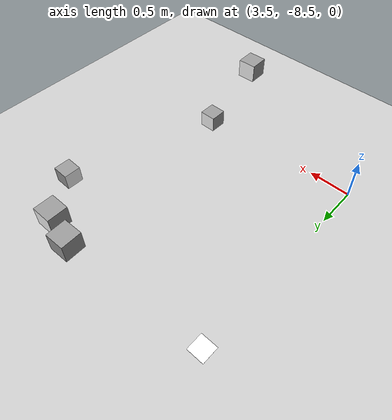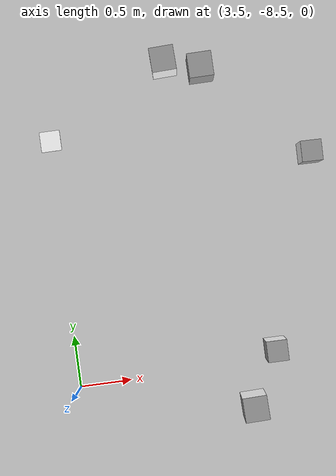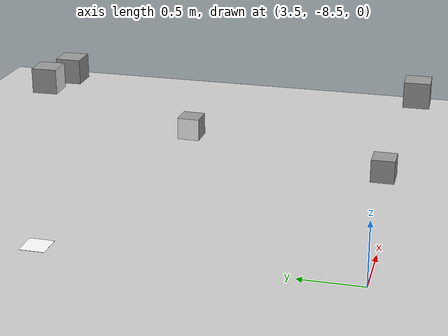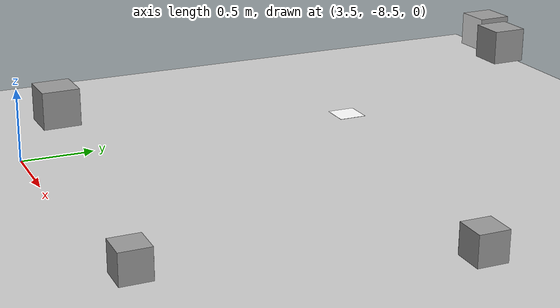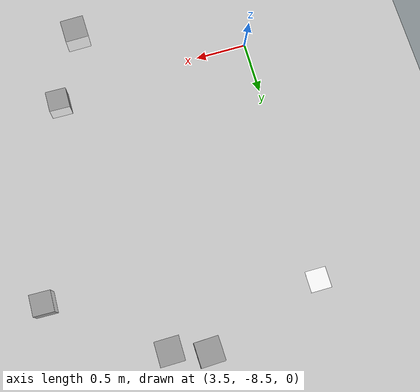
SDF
<sdf version="1.7">
 <world name="default">
  <model name="ground_plane">
   <static>1</static>
   <link name="link">
    <collision name="collision">
     <geometry><plane><normal>0 0 1</normal><size>100 100</size></plane></geometry>
     <surface>
      <contact><collide_bitmask>65535</collide_bitmask></contact>
      <friction><ode><mu>100</mu><mu2>50</mu2></ode></friction>
     </surface>
    </collision>
    <visual name="visual">
     <cast_shadows>0</cast_shadows>
     <geometry><plane><normal>0 0 1</normal><size>100 100</size></plane></geometry>
     <material>
      <script><uri>file://media/materials/scripts/gazebo.material</uri><name>Gazebo/Grey</name></script>
     </material>
    </visual>
   </link>
  </model>
  <model name="marker16_box">
   <link name="marker">
    <inertial>
     <mass>0.1</mass>
     <inertia><ixx>0</ixx><ixy>0</ixy><ixz>0</ixz><iyy>0</iyy><iyz>0</iyz><izz>0</izz></inertia>
    </inertial>
    <self_collide>1</self_collide>
    <pose>-0.76428 -0.101106 0.120004 -0.015494 1.56996 -0.015507</pose>
    <visual name="visual">
     <geometry><box><size>0.2 0.2 0.001</size></box></geometry>
     <material>
      <script>
       <uri>model://marker16/material/scripts</uri>
       <uri>model://marker16/material/textures</uri>
       <name>Aruco/marker16</name>
      </script>
      <shader type="pixel"><normal_map>__default__</normal_map></shader>
      <emissive>0 0 0 1</emissive>
      <ambient>1 1 1 1</ambient>
      <diffuse>1 1 1 1</diffuse>
      <specular>0 0 0 1</specular>
     </material>
    </visual>
    <collision name="collision">
     <geometry><box><size>0.2 0.2 0.02</size></box></geometry>
     <surface>
      <friction>
       <ode><mu>1</mu><mu2>1</mu2><fdir1>0 0 0</fdir1><slip1>0</slip1><slip2>0</slip2></ode>
       <torsional>
        <coefficient>1</coefficient>
        <patch_radius>0</patch_radius>
        <surface_radius>0</surface_radius>
        <use_patch_radius>1</use_patch_radius>
        <ode><slip>0</slip></ode>
       </torsional>
      </friction>
      <bounce><restitution_coefficient>0</restitution_coefficient><threshold>1e+06</threshold></bounce>
      <contact>
       <collide_without_contact>0</collide_without_contact>
       <collide_without_contact_bitmask>1</collide_without_contact_bitmask>
       <collide_bitmask>1</collide_bitmask>
       <ode>
        <soft_cfm>0</soft_cfm>
        <soft_erp>0.2</soft_erp>
        <kp>1e+13</kp>
        <kd>1</kd>
        <max_vel>0.01</max_vel>
        <min_depth>0</min_depth>
       </ode>
       <bullet>
        <split_impulse>1</split_impulse>
        <split_impulse_penetration_threshold>-0.01</split_impulse_penetration_threshold>
        <soft_cfm>0</soft_cfm>
        <soft_erp>0.2</soft_erp>
        <kp>1e+13</kp>
        <kd>1</kd>
       </bullet>
      </contact>
     </surface>
    </collision>
   </link>
   <link name="link_1">
    <inertial>
     <mass>1</mass>
     <inertia>
      <ixx>0.166667</ixx>
      <ixy>0</ixy>
      <ixz>0</ixz>
      <iyy>0.166667</iyy>
      <iyz>0</iyz>
      <izz>0.166667</izz>
     </inertia>
    </inertial>
    <pose>-0.86428 -0.101106 0.12 -1.3e-05 -4.2e-05 0</pose>
    <visual name="visual">
     <geometry><box><size>0.2 0.2 0.2</size></box></geometry>
     <material>
      <lighting>1</lighting>
      <script><uri>file://media/materials/scripts/gazebo.material</uri><name>Gazebo/Grey</name></script>
      <shader type="pixel"><normal_map>__default__</normal_map></shader>
      <emissive>0 0 0 1</emissive>
      <ambient>0.3 0.3 0.3 1</ambient>
      <diffuse>0.7 0.7 0.7 1</diffuse>
      <specular>0.01 0.01 0.01 1</specular>
     </material>
    </visual>
    <collision name="collision">
     <geometry><box><size>0.2 0.2 0.2</size></box></geometry>
     <surface>
      <friction>
       <ode><mu>1</mu><mu2>1</mu2><fdir1>0 0 0</fdir1><slip1>0</slip1><slip2>0</slip2></ode>
       <torsional>
        <coefficient>1</coefficient>
        <patch_radius>0</patch_radius>
        <surface_radius>0</surface_radius>
        <use_patch_radius>1</use_patch_radius>
        <ode><slip>0</slip></ode>
       </torsional>
      </friction>
      <bounce><restitution_coefficient>0</restitution_coefficient><threshold>1e+06</threshold></bounce>
      <contact>
       <collide_without_contact>0</collide_without_contact>
       <collide_without_contact_bitmask>1</collide_without_contact_bitmask>
       <collide_bitmask>1</collide_bitmask>
       <ode>
        <soft_cfm>0</soft_cfm>
        <soft_erp>0.2</soft_erp>
        <kp>1e+13</kp>
        <kd>1</kd>
        <max_vel>0.01</max_vel>
        <min_depth>0</min_depth>
       </ode>
       <bullet>
        <split_impulse>1</split_impulse>
        <split_impulse_penetration_threshold>-0.01</split_impulse_penetration_threshold>
        <soft_cfm>0</soft_cfm>
        <soft_erp>0.2</soft_erp>
        <kp>1e+13</kp>
        <kd>1</kd>
       </bullet>
      </contact>
     </surface>
    </collision>
   </link>
   <joint name="link_1_JOINT_3" type="fixed">
    <parent>link_1</parent>
    <child>marker</child>
    <physics>
     <ode><limit><cfm>0</cfm><erp>0.2</erp></limit><suspension><cfm>0</cfm><erp>0.2</erp></suspension></ode>
    </physics>
   </joint>
   <static>0</static>
   <pose>4.96226 -7.77037 0.779961 9e-06 4.7e-05 1.59491</pose>
  </model>
  <model name="marker19_box">
   <link name="marker">
    <inertial>
     <mass>0.1</mass>
     <inertia><ixx>0</ixx><ixy>0</ixy><ixz>0</ixz><iyy>0</iyy><iyz>0</iyz><izz>0</izz></inertia>
    </inertial>
    <self_collide>1</self_collide>
    <pose>-0.76428 -0.101106 0.120004 -0.015494 1.56996 -0.015507</pose>
    <visual name="visual">
     <geometry><box><size>0.2 0.2 0.001</size></box></geometry>
     <material>
      <script>
       <uri>model://marker19/material/scripts</uri>
       <uri>model://marker19/material/textures</uri>
       <name>Aruco/marker19</name>
      </script>
      <shader type="pixel"><normal_map>__default__</normal_map></shader>
      <emissive>0 0 0 1</emissive>
      <ambient>1 1 1 1</ambient>
      <diffuse>1 1 1 1</diffuse>
      <specular>0 0 0 1</specular>
     </material>
    </visual>
    <collision name="collision">
     <geometry><box><size>0.2 0.2 0.02</size></box></geometry>
     <surface>
      <friction>
       <ode><mu>1</mu><mu2>1</mu2><fdir1>0 0 0</fdir1><slip1>0</slip1><slip2>0</slip2></ode>
       <torsional>
        <coefficient>1</coefficient>
        <patch_radius>0</patch_radius>
        <surface_radius>0</surface_radius>
        <use_patch_radius>1</use_patch_radius>
        <ode><slip>0</slip></ode>
       </torsional>
      </friction>
      <bounce><restitution_coefficient>0</restitution_coefficient><threshold>1e+06</threshold></bounce>
      <contact>
       <collide_without_contact>0</collide_without_contact>
       <collide_without_contact_bitmask>1</collide_without_contact_bitmask>
       <collide_bitmask>1</collide_bitmask>
       <ode>
        <soft_cfm>0</soft_cfm>
        <soft_erp>0.2</soft_erp>
        <kp>1e+13</kp>
        <kd>1</kd>
        <max_vel>0.01</max_vel>
        <min_depth>0</min_depth>
       </ode>
       <bullet>
        <split_impulse>1</split_impulse>
        <split_impulse_penetration_threshold>-0.01</split_impulse_penetration_threshold>
        <soft_cfm>0</soft_cfm>
        <soft_erp>0.2</soft_erp>
        <kp>1e+13</kp>
        <kd>1</kd>
       </bullet>
      </contact>
     </surface>
    </collision>
   </link>
   <link name="link_1">
    <inertial>
     <mass>1</mass>
     <inertia>
      <ixx>0.166667</ixx>
      <ixy>0</ixy>
      <ixz>0</ixz>
      <iyy>0.166667</iyy>
      <iyz>0</iyz>
      <izz>0.166667</izz>
     </inertia>
    </inertial>
    <pose>-0.86428 -0.101106 0.12 -1.3e-05 -4.2e-05 0</pose>
    <visual name="visual">
     <geometry><box><size>0.2 0.2 0.2</size></box></geometry>
     <material>
      <lighting>1</lighting>
      <script><uri>file://media/materials/scripts/gazebo.material</uri><name>Gazebo/Grey</name></script>
      <shader type="pixel"><normal_map>__default__</normal_map></shader>
      <emissive>0 0 0 1</emissive>
      <ambient>0.3 0.3 0.3 1</ambient>
      <diffuse>0.7 0.7 0.7 1</diffuse>
      <specular>0.01 0.01 0.01 1</specular>
     </material>
    </visual>
    <collision name="collision">
     <geometry><box><size>0.2 0.2 0.2</size></box></geometry>
     <surface>
      <friction>
       <ode><mu>1</mu><mu2>1</mu2><fdir1>0 0 0</fdir1><slip1>0</slip1><slip2>0</slip2></ode>
       <torsional>
        <coefficient>1</coefficient>
        <patch_radius>0</patch_radius>
        <surface_radius>0</surface_radius>
        <use_patch_radius>1</use_patch_radius>
        <ode><slip>0</slip></ode>
       </torsional>
      </friction>
      <bounce><restitution_coefficient>0</restitution_coefficient><threshold>1e+06</threshold></bounce>
      <contact>
       <collide_without_contact>0</collide_without_contact>
       <collide_without_contact_bitmask>1</collide_without_contact_bitmask>
       <collide_bitmask>1</collide_bitmask>
       <ode>
        <soft_cfm>0</soft_cfm>
        <soft_erp>0.2</soft_erp>
        <kp>1e+13</kp>
        <kd>1</kd>
        <max_vel>0.01</max_vel>
        <min_depth>0</min_depth>
       </ode>
       <bullet>
        <split_impulse>1</split_impulse>
        <split_impulse_penetration_threshold>-0.01</split_impulse_penetration_threshold>
        <soft_cfm>0</soft_cfm>
        <soft_erp>0.2</soft_erp>
        <kp>1e+13</kp>
        <kd>1</kd>
       </bullet>
      </contact>
     </surface>
    </collision>
   </link>
   <joint name="link_1_JOINT_3" type="fixed">
    <parent>link_1</parent>
    <child>marker</child>
    <physics>
     <ode><limit><cfm>0</cfm><erp>0.2</erp></limit><suspension><cfm>0</cfm><erp>0.2</erp></suspension></ode>
    </physics>
   </joint>
   <static>0</static>
   <pose>5.33933 -7.5067 -0.020019 1.2e-05 2e-05 1.56372</pose>
  </model>
  <model name="marker20_box">
   <link name="marker">
    <inertial>
     <mass>0.1</mass>
     <inertia><ixx>0</ixx><ixy>0</ixy><ixz>0</ixz><iyy>0</iyy><iyz>0</iyz><izz>0</izz></inertia>
    </inertial>
    <self_collide>1</self_collide>
    <pose>-0.76428 -0.101106 0.120004 -0.015494 1.56996 -0.015507</pose>
    <visual name="visual">
     <geometry><box><size>0.2 0.2 0.001</size></box></geometry>
     <material>
      <script>
       <uri>model://marker20/material/scripts</uri>
       <uri>model://marker20/material/textures</uri>
       <name>Aruco/marker20</name>
      </script>
      <shader type="pixel"><normal_map>__default__</normal_map></shader>
      <emissive>0 0 0 1</emissive>
      <ambient>1 1 1 1</ambient>
      <diffuse>1 1 1 1</diffuse>
      <specular>0 0 0 1</specular>
     </material>
    </visual>
    <collision name="collision">
     <geometry><box><size>0.2 0.2 0.02</size></box></geometry>
     <surface>
      <friction>
       <ode><mu>1</mu><mu2>1</mu2><fdir1>0 0 0</fdir1><slip1>0</slip1><slip2>0</slip2></ode>
       <torsional>
        <coefficient>1</coefficient>
        <patch_radius>0</patch_radius>
        <surface_radius>0</surface_radius>
        <use_patch_radius>1</use_patch_radius>
        <ode><slip>0</slip></ode>
       </torsional>
      </friction>
      <bounce><restitution_coefficient>0</restitution_coefficient><threshold>1e+06</threshold></bounce>
      <contact>
       <collide_without_contact>0</collide_without_contact>
       <collide_without_contact_bitmask>1</collide_without_contact_bitmask>
       <collide_bitmask>1</collide_bitmask>
       <ode>
        <soft_cfm>0</soft_cfm>
        <soft_erp>0.2</soft_erp>
        <kp>1e+13</kp>
        <kd>1</kd>
        <max_vel>0.01</max_vel>
        <min_depth>0</min_depth>
       </ode>
       <bullet>
        <split_impulse>1</split_impulse>
        <split_impulse_penetration_threshold>-0.01</split_impulse_penetration_threshold>
        <soft_cfm>0</soft_cfm>
        <soft_erp>0.2</soft_erp>
        <kp>1e+13</kp>
        <kd>1</kd>
       </bullet>
      </contact>
     </surface>
    </collision>
   </link>
   <link name="link_1">
    <inertial>
     <mass>1</mass>
     <inertia>
      <ixx>0.166667</ixx>
      <ixy>0</ixy>
      <ixz>0</ixz>
      <iyy>0.166667</iyy>
      <iyz>0</iyz>
      <izz>0.166667</izz>
     </inertia>
    </inertial>
    <pose>-0.86428 -0.101106 0.12 -1.3e-05 -4.2e-05 0</pose>
    <visual name="visual">
     <geometry><box><size>0.2 0.2 0.2</size></box></geometry>
     <material>
      <lighting>1</lighting>
      <script><uri>file://media/materials/scripts/gazebo.material</uri><name>Gazebo/Grey</name></script>
      <shader type="pixel"><normal_map>__default__</normal_map></shader>
      <emissive>0 0 0 1</emissive>
      <ambient>0.3 0.3 0.3 1</ambient>
      <diffuse>0.7 0.7 0.7 1</diffuse>
      <specular>0.01 0.01 0.01 1</specular>
     </material>
    </visual>
    <collision name="collision">
     <geometry><box><size>0.2 0.2 0.2</size></box></geometry>
     <surface>
      <friction>
       <ode><mu>1</mu><mu2>1</mu2><fdir1>0 0 0</fdir1><slip1>0</slip1><slip2>0</slip2></ode>
       <torsional>
        <coefficient>1</coefficient>
        <patch_radius>0</patch_radius>
        <surface_radius>0</surface_radius>
        <use_patch_radius>1</use_patch_radius>
        <ode><slip>0</slip></ode>
       </torsional>
      </friction>
      <bounce><restitution_coefficient>0</restitution_coefficient><threshold>1e+06</threshold></bounce>
      <contact>
       <collide_without_contact>0</collide_without_contact>
       <collide_without_contact_bitmask>1</collide_without_contact_bitmask>
       <collide_bitmask>1</collide_bitmask>
       <ode>
        <soft_cfm>0</soft_cfm>
        <soft_erp>0.2</soft_erp>
        <kp>1e+13</kp>
        <kd>1</kd>
        <max_vel>0.01</max_vel>
        <min_depth>0</min_depth>
       </ode>
       <bullet>
        <split_impulse>1</split_impulse>
        <split_impulse_penetration_threshold>-0.01</split_impulse_penetration_threshold>
        <soft_cfm>0</soft_cfm>
        <soft_erp>0.2</soft_erp>
        <kp>1e+13</kp>
        <kd>1</kd>
       </bullet>
      </contact>
     </surface>
    </collision>
   </link>
   <joint name="link_1_JOINT_3" type="fixed">
    <parent>link_1</parent>
    <child>marker</child>
    <physics>
     <ode><limit><cfm>0</cfm><erp>0.2</erp></limit><suspension><cfm>0</cfm><erp>0.2</erp></suspension></ode>
    </physics>
   </joint>
   <static>0</static>
   <pose>4.90565 -4.94054 0.780015 1.3e-05 -1.2e-05 1.57834</pose>
  </model>
  <model name="marker27_box">
   <link name="marker">
    <inertial>
     <mass>0.1</mass>
     <inertia><ixx>0</ixx><ixy>0</ixy><ixz>0</ixz><iyy>0</iyy><iyz>0</iyz><izz>0</izz></inertia>
    </inertial>
    <self_collide>1</self_collide>
    <pose>-0.76428 -0.101106 0.120004 -0.015494 1.56996 -0.015507</pose>
    <visual name="visual">
     <geometry><box><size>0.2 0.2 0.001</size></box></geometry>
     <material>
      <script>
       <uri>model://marker27/material/scripts</uri>
       <uri>model://marker27/material/textures</uri>
       <name>Aruco/marker27</name>
      </script>
      <shader type="pixel"><normal_map>__default__</normal_map></shader>
      <emissive>0 0 0 1</emissive>
      <ambient>1 1 1 1</ambient>
      <diffuse>1 1 1 1</diffuse>
      <specular>0 0 0 1</specular>
     </material>
    </visual>
    <collision name="collision">
     <geometry><box><size>0.2 0.2 0.02</size></box></geometry>
     <surface>
      <friction>
       <ode><mu>1</mu><mu2>1</mu2><fdir1>0 0 0</fdir1><slip1>0</slip1><slip2>0</slip2></ode>
       <torsional>
        <coefficient>1</coefficient>
        <patch_radius>0</patch_radius>
        <surface_radius>0</surface_radius>
        <use_patch_radius>1</use_patch_radius>
        <ode><slip>0</slip></ode>
       </torsional>
      </friction>
      <bounce><restitution_coefficient>0</restitution_coefficient><threshold>1e+06</threshold></bounce>
      <contact>
       <collide_without_contact>0</collide_without_contact>
       <collide_without_contact_bitmask>1</collide_without_contact_bitmask>
       <collide_bitmask>1</collide_bitmask>
       <ode>
        <soft_cfm>0</soft_cfm>
        <soft_erp>0.2</soft_erp>
        <kp>1e+13</kp>
        <kd>1</kd>
        <max_vel>0.01</max_vel>
        <min_depth>0</min_depth>
       </ode>
       <bullet>
        <split_impulse>1</split_impulse>
        <split_impulse_penetration_threshold>-0.01</split_impulse_penetration_threshold>
        <soft_cfm>0</soft_cfm>
        <soft_erp>0.2</soft_erp>
        <kp>1e+13</kp>
        <kd>1</kd>
       </bullet>
      </contact>
     </surface>
    </collision>
   </link>
   <link name="link_1">
    <inertial>
     <mass>1</mass>
     <inertia>
      <ixx>0.166667</ixx>
      <ixy>0</ixy>
      <ixz>0</ixz>
      <iyy>0.166667</iyy>
      <iyz>0</iyz>
      <izz>0.166667</izz>
     </inertia>
    </inertial>
    <pose>-0.86428 -0.101106 0.12 -1.3e-05 -4.2e-05 0</pose>
    <visual name="visual">
     <geometry><box><size>0.2 0.2 0.2</size></box></geometry>
     <material>
      <lighting>1</lighting>
      <script><uri>file://media/materials/scripts/gazebo.material</uri><name>Gazebo/Grey</name></script>
      <shader type="pixel"><normal_map>__default__</normal_map></shader>
      <emissive>0 0 0 1</emissive>
      <ambient>0.3 0.3 0.3 1</ambient>
      <diffuse>0.7 0.7 0.7 1</diffuse>
      <specular>0.01 0.01 0.01 1</specular>
     </material>
    </visual>
    <collision name="collision">
     <geometry><box><size>0.2 0.2 0.2</size></box></geometry>
     <surface>
      <friction>
       <ode><mu>1</mu><mu2>1</mu2><fdir1>0 0 0</fdir1><slip1>0</slip1><slip2>0</slip2></ode>
       <torsional>
        <coefficient>1</coefficient>
        <patch_radius>0</patch_radius>
        <surface_radius>0</surface_radius>
        <use_patch_radius>1</use_patch_radius>
        <ode><slip>0</slip></ode>
       </torsional>
      </friction>
      <bounce><restitution_coefficient>0</restitution_coefficient><threshold>1e+06</threshold></bounce>
      <contact>
       <collide_without_contact>0</collide_without_contact>
       <collide_without_contact_bitmask>1</collide_without_contact_bitmask>
       <collide_bitmask>1</collide_bitmask>
       <ode>
        <soft_cfm>0</soft_cfm>
        <soft_erp>0.2</soft_erp>
        <kp>1e+13</kp>
        <kd>1</kd>
        <max_vel>0.01</max_vel>
        <min_depth>0</min_depth>
       </ode>
       <bullet>
        <split_impulse>1</split_impulse>
        <split_impulse_penetration_threshold>-0.01</split_impulse_penetration_threshold>
        <soft_cfm>0</soft_cfm>
        <soft_erp>0.2</soft_erp>
        <kp>1e+13</kp>
        <kd>1</kd>
       </bullet>
      </contact>
     </surface>
    </collision>
   </link>
   <joint name="link_1_JOINT_3" type="fixed">
    <parent>link_1</parent>
    <child>marker</child>
    <physics>
     <ode><limit><cfm>0</cfm><erp>0.2</erp></limit><suspension><cfm>0</cfm><erp>0.2</erp></suspension></ode>
    </physics>
   </joint>
   <static>0</static>
   <pose>4.84692 -6.57649 0.780006 1.8e-05 1e-06 -1.5366</pose>
  </model>
  <model name="marker40_box">
   <link name="marker">
    <inertial>
     <mass>0.1</mass>
     <inertia><ixx>0</ixx><ixy>0</ixy><ixz>0</ixz><iyy>0</iyy><iyz>0</iyz><izz>0</izz></inertia>
    </inertial>
    <self_collide>1</self_collide>
    <pose>-0.76428 -0.101106 0.120004 -0.015494 1.56996 -0.015507</pose>
    <visual name="visual">
     <geometry><box><size>0.2 0.2 0.001</size></box></geometry>
     <material>
      <script>
       <uri>model://marker40/material/scripts</uri>
       <uri>model://marker40/material/textures</uri>
       <name>Aruco/marker40</name>
      </script>
      <shader type="pixel"><normal_map>__default__</normal_map></shader>
      <emissive>0 0 0 1</emissive>
      <ambient>1 1 1 1</ambient>
      <diffuse>1 1 1 1</diffuse>
      <specular>0 0 0 1</specular>
     </material>
    </visual>
    <collision name="collision">
     <geometry><box><size>0.2 0.2 0.02</size></box></geometry>
     <surface>
      <friction>
       <ode><mu>1</mu><mu2>1</mu2><fdir1>0 0 0</fdir1><slip1>0</slip1><slip2>0</slip2></ode>
       <torsional>
        <coefficient>1</coefficient>
        <patch_radius>0</patch_radius>
        <surface_radius>0</surface_radius>
        <use_patch_radius>1</use_patch_radius>
        <ode><slip>0</slip></ode>
       </torsional>
      </friction>
      <bounce><restitution_coefficient>0</restitution_coefficient><threshold>1e+06</threshold></bounce>
      <contact>
       <collide_without_contact>0</collide_without_contact>
       <collide_without_contact_bitmask>1</collide_without_contact_bitmask>
       <collide_bitmask>1</collide_bitmask>
       <ode>
        <soft_cfm>0</soft_cfm>
        <soft_erp>0.2</soft_erp>
        <kp>1e+13</kp>
        <kd>1</kd>
        <max_vel>0.01</max_vel>
        <min_depth>0</min_depth>
       </ode>
       <bullet>
        <split_impulse>1</split_impulse>
        <split_impulse_penetration_threshold>-0.01</split_impulse_penetration_threshold>
        <soft_cfm>0</soft_cfm>
        <soft_erp>0.2</soft_erp>
        <kp>1e+13</kp>
        <kd>1</kd>
       </bullet>
      </contact>
     </surface>
    </collision>
   </link>
   <link name="link_1">
    <inertial>
     <mass>1</mass>
     <inertia>
      <ixx>0.166667</ixx>
      <ixy>0</ixy>
      <ixz>0</ixz>
      <iyy>0.166667</iyy>
      <iyz>0</iyz>
      <izz>0.166667</izz>
     </inertia>
    </inertial>
    <pose>-0.86428 -0.101106 0.12 -1.3e-05 -4.2e-05 0</pose>
    <visual name="visual">
     <geometry><box><size>0.2 0.2 0.2</size></box></geometry>
     <material>
      <lighting>1</lighting>
      <script><uri>file://media/materials/scripts/gazebo.material</uri><name>Gazebo/Grey</name></script>
      <shader type="pixel"><normal_map>__default__</normal_map></shader>
      <emissive>0 0 0 1</emissive>
      <ambient>0.3 0.3 0.3 1</ambient>
      <diffuse>0.7 0.7 0.7 1</diffuse>
      <specular>0.01 0.01 0.01 1</specular>
     </material>
    </visual>
    <collision name="collision">
     <geometry><box><size>0.2 0.2 0.2</size></box></geometry>
     <surface>
      <friction>
       <ode><mu>1</mu><mu2>1</mu2><fdir1>0 0 0</fdir1><slip1>0</slip1><slip2>0</slip2></ode>
       <torsional>
        <coefficient>1</coefficient>
        <patch_radius>0</patch_radius>
        <surface_radius>0</surface_radius>
        <use_patch_radius>1</use_patch_radius>
        <ode><slip>0</slip></ode>
       </torsional>
      </friction>
      <bounce><restitution_coefficient>0</restitution_coefficient><threshold>1e+06</threshold></bounce>
      <contact>
       <collide_without_contact>0</collide_without_contact>
       <collide_without_contact_bitmask>1</collide_without_contact_bitmask>
       <collide_bitmask>1</collide_bitmask>
       <ode>
        <soft_cfm>0</soft_cfm>
        <soft_erp>0.2</soft_erp>
        <kp>1e+13</kp>
        <kd>1</kd>
        <max_vel>0.01</max_vel>
        <min_depth>0</min_depth>
       </ode>
       <bullet>
        <split_impulse>1</split_impulse>
        <split_impulse_penetration_threshold>-0.01</split_impulse_penetration_threshold>
        <soft_cfm>0</soft_cfm>
        <soft_erp>0.2</soft_erp>
        <kp>1e+13</kp>
        <kd>1</kd>
       </bullet>
      </contact>
     </surface>
    </collision>
   </link>
   <joint name="link_1_JOINT_3" type="fixed">
    <parent>link_1</parent>
    <child>marker</child>
    <physics>
     <ode><limit><cfm>0</cfm><erp>0.2</erp></limit><suspension><cfm>0</cfm><erp>0.2</erp></suspension></ode>
    </physics>
   </joint>
   <static>0</static>
   <pose>5.14805 -6.60959 -0.020008 1.2e-05 1.8e-05 3.12094</pose>
  </model>
  <model name="marker31_0.2">
   <link name="marker">
    <inertial>
     <mass>0.1</mass>
     <inertia><ixx>0</ixx><ixy>0</ixy><ixz>0</ixz><iyy>0</iyy><iyz>0</iyz><izz>0</izz></inertia>
    </inertial>
    <self_collide>1</self_collide>
    <visual name="visual">
     <geometry><box><size>0.2 0.2 0.001</size></box></geometry>
     <material>
      <script>
       <uri>model://marker31/material/scripts</uri>
       <uri>model://marker31/material/textures</uri>
       <name>Aruco/marker31</name>
      </script>
      <shader type="pixel"><normal_map>__default__</normal_map></shader>
      <ambient>1 1 1 1</ambient>
      <diffuse>1 1 1 1</diffuse>
      <specular>0 0 0 1</specular>
      <emissive>0 0 0 1</emissive>
     </material>
    </visual>
    <collision name="collision">
     <geometry><box><size>0.09 0.090001 0.02</size></box></geometry>
     <surface>
      <friction>
       <ode><mu>1</mu><mu2>1</mu2><fdir1>0 0 0</fdir1><slip1>0</slip1><slip2>0</slip2></ode>
       <torsional>
        <coefficient>1</coefficient>
        <patch_radius>0</patch_radius>
        <surface_radius>0</surface_radius>
        <use_patch_radius>1</use_patch_radius>
        <ode><slip>0</slip></ode>
       </torsional>
      </friction>
      <bounce><restitution_coefficient>0</restitution_coefficient><threshold>1e+06</threshold></bounce>
      <contact>
       <collide_without_contact>0</collide_without_contact>
       <collide_without_contact_bitmask>1</collide_without_contact_bitmask>
       <collide_bitmask>1</collide_bitmask>
       <ode>
        <soft_cfm>0</soft_cfm>
        <soft_erp>0.2</soft_erp>
        <kp>1e+13</kp>
        <kd>1</kd>
        <max_vel>0.01</max_vel>
        <min_depth>0</min_depth>
       </ode>
       <bullet>
        <split_impulse>1</split_impulse>
        <split_impulse_penetration_threshold>-0.01</split_impulse_penetration_threshold>
        <soft_cfm>0</soft_cfm>
        <soft_erp>0.2</soft_erp>
        <kp>1e+13</kp>
        <kd>1</kd>
       </bullet>
      </contact>
     </surface>
    </collision>
   </link>
   <static>0</static>
   <pose>3.52807 -6.06778 0.01 -3e-06 0 0</pose>
  </model>
 </world>
</sdf>
